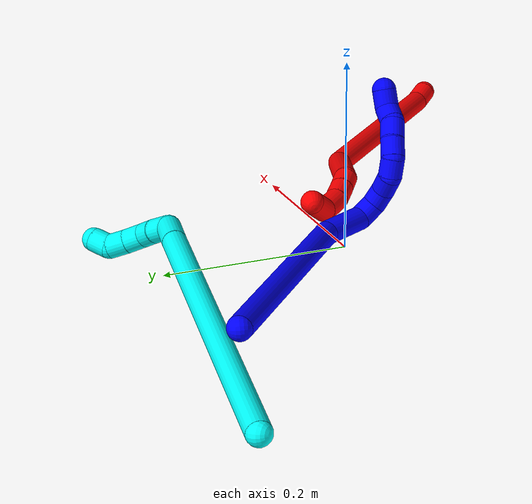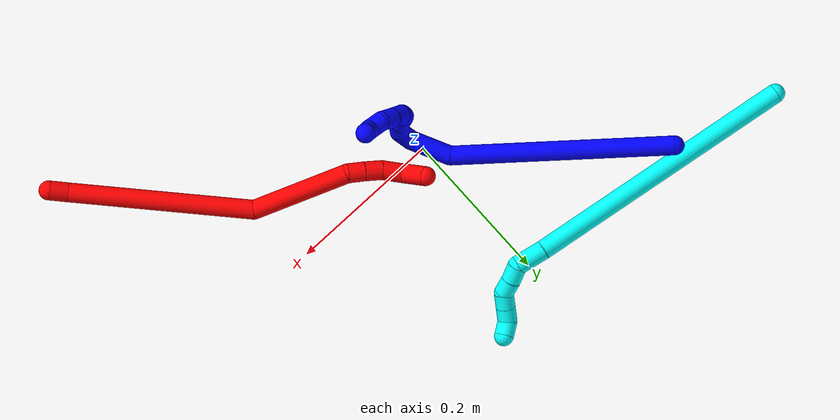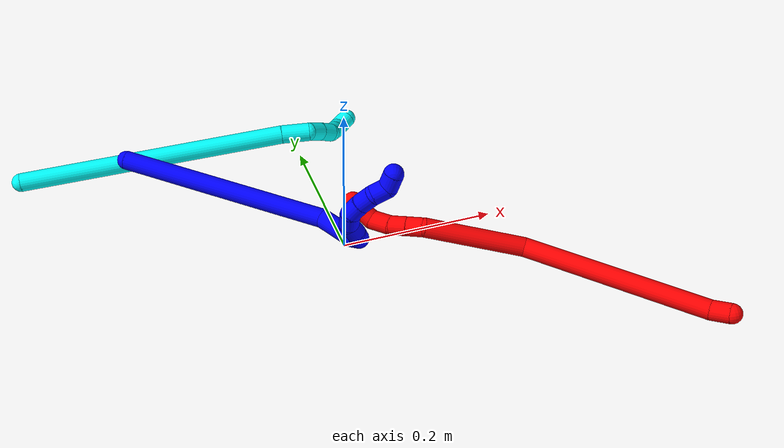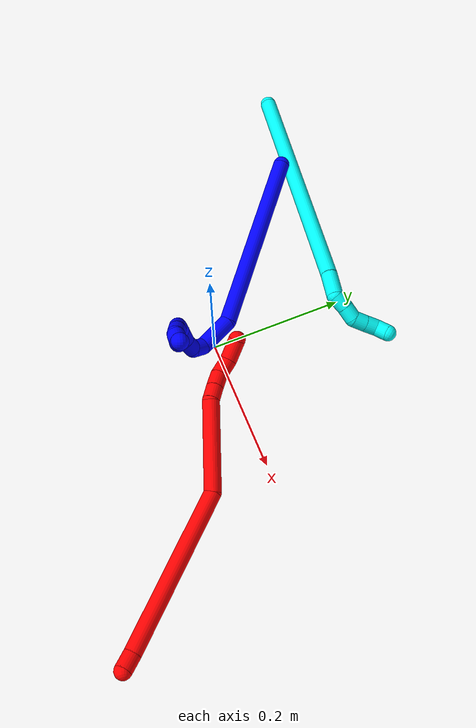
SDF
<sdf version="1.7">
 <world name="default">
  <plugin name="TubeGeneratorPlugin" filename="libtube_generator_plugin.so"/>
  <model name="photoneo_s_sensor">
   <static>1</static>
   <pose>0 0 2 1.57079 1.57079 3.14159</pose>
   <link name="link">
    <inertial><mass>0.1</mass></inertial>
    <sensor name="sensor" type="depth">
     <update_rate>30</update_rate>
     <camera>
      <horizontal_fov>1.22</horizontal_fov>
      <image><width>1920</width><height>1200</height><format>B8G8R8</format></image>
      <clip><near>0.1</near><far>4</far></clip>
      <depth_camera><output>points</output></depth_camera>
     </camera>
     <plugin name="camera_plugin" filename="libgazebo_ros_depth_camera.so">
      <baseline>0.2</baseline>
      <alwaysOn>1</alwaysOn>
      <updateRate>0.0</updateRate>
      <cameraName>camera_ir</cameraName>
      <imageTopicName>/camera/color/image_raw</imageTopicName>
      <cameraInfoTopicName>/camera/color/camera_info</cameraInfoTopicName>
      <depthImageTopicName>/camera/depth/image_raw</depthImageTopicName>
      <depthImageCameraInfoTopicName>/camera/depth/camera_info</depthImageCameraInfoTopicName>
      <pointCloudTopicName>/camera/depth/points</pointCloudTopicName>
      <frameName>fr_optical</frameName>
      <pointCloudCutoff>0.1</pointCloudCutoff>
      <pointCloudCutoffMax>2.0</pointCloudCutoffMax>
      <distortionK1>0</distortionK1>
      <distortionK2>0</distortionK2>
      <distortionK3>0</distortionK3>
      <distortionT1>0</distortionT1>
      <distortionT2>0</distortionT2>
      <CxPrime>0</CxPrime>
      <Cx>0</Cx>
      <Cy>0</Cy>
      <focalLength>0</focalLength>
      <hackBaseline>0</hackBaseline>
     </plugin>
    </sensor>
   </link>
  </model>
  <gravity>0 0 -9.8</gravity>
  <magnetic_field>6e-06 2.3e-05 -4.2e-05</magnetic_field>
  <atmosphere type="adiabatic"/>
  <physics name="default_physics" default="0" type="ode">
   <max_step_size>0.003</max_step_size>
   <real_time_factor>1</real_time_factor>
   <real_time_update_rate>1000</real_time_update_rate>
   <max_contacts>10000</max_contacts>
   <ode>
    <solver>
     <type>quick</type>
     <iters>100</iters>
     <sor>1.3</sor>
     <use_dynamic_moi_rescaling>0</use_dynamic_moi_rescaling>
    </solver>
    <constraints>
     <contact_max_correcting_vel>0</contact_max_correcting_vel>
     <contact_surface_layer>0.001</contact_surface_layer>
     <cfm>0</cfm>
     <erp>0.2</erp>
    </constraints>
   </ode>
  </physics>
  <scene><ambient>0.4 0.4 0.4 1</ambient><background>0.7 0.7 0.7 1</background><shadows>0</shadows></scene>
  <audio><device>default</device></audio>
  <spherical_coordinates>
   <surface_model>EARTH_WGS84</surface_model>
   <latitude_deg>0</latitude_deg>
   <longitude_deg>0</longitude_deg>
   <elevation>0</elevation>
   <heading_deg>0</heading_deg>
  </spherical_coordinates>
  <model name="bin">
   <static>1</static>
   <link name="bottom">
    <collision name="collision-bottom">
     <pose>0 0 -0.01 0 -0 0</pose>
     <geometry><box><size>0.8 0.6 0.02</size></box></geometry>
     <surface>
      <friction><ode><mu>100</mu><mu2>100</mu2></ode></friction>
      <contact><collide_bitmask>65535</collide_bitmask></contact>
     </surface>
    </collision>
   </link>
   <link name="west_wall">
    <collision name="collision-west_wall">
     <pose>-0.41 0 0.1 0 -0 0</pose>
     <geometry><box><size>0.02 0.6 0.2</size></box></geometry>
     <surface>
      <friction><ode><mu>100</mu><mu2>100</mu2></ode></friction>
      <contact><collide_bitmask>65535</collide_bitmask></contact>
     </surface>
    </collision>
   </link>
   <link name="east_wall">
    <collision name="collision-east_wall">
     <pose>0.41 0 0.1 0 -0 0</pose>
     <geometry><box><size>0.02 0.6 0.2</size></box></geometry>
     <surface>
      <friction><ode><mu>100</mu><mu2>100</mu2></ode></friction>
      <contact><collide_bitmask>65535</collide_bitmask></contact>
     </surface>
    </collision>
   </link>
   <link name="south_wall">
    <collision name="collision-south_wall">
     <pose>0 -0.31 0.1 0 -0 0</pose>
     <geometry><box><size>0.8 0.02 0.2</size></box></geometry>
     <surface>
      <friction><ode><mu>100</mu><mu2>100</mu2></ode></friction>
      <contact><collide_bitmask>65535</collide_bitmask></contact>
     </surface>
    </collision>
   </link>
   <link name="north_wall">
    <collision name="collision-north_wall">
     <pose>0 0.31 0.1 0 -0 0</pose>
     <geometry><box><size>0.8 0.02 0.2</size></box></geometry>
     <surface>
      <friction><ode><mu>100</mu><mu2>100</mu2></ode></friction>
      <contact><collide_bitmask>65535</collide_bitmask></contact>
     </surface>
    </collision>
   </link>
  </model>
  <model name="1">
   <static>0</static>
   <link name="1">
    <collision name="collision-cylinder-e_1_1_4">
     <pose>0.119113 -0.059212 -0.050198 2.27399 0.993222 1.72704</pose>
     <geometry><cylinder><radius>0.0125</radius><length>0.284351</length></cylinder></geometry>
     <surface>
      <friction><ode><mu>1.16</mu><mu2>1.16</mu2><slip1>0</slip1><slip2>0</slip2></ode></friction>
      <contact><ode><kp>1e+06</kp><kd>1</kd><max_vel>0</max_vel><min_depth>0.001</min_depth></ode></contact>
     </surface>
    </collision>
    <visual name="visual-cylinder-e_1_1_4">
     <pose>0.119113 -0.059212 -0.050198 2.27399 0.993222 1.72704</pose>
     <geometry><cylinder><radius>0.0125</radius><length>0.284351</length></cylinder></geometry>
     <material><ambient>0 0 1 1</ambient></material>
    </visual>
    <collision name="collision-cylinder-e_2_4_5">
     <pose>0.254793 -0.12754 -0.119324 2.69276 0.66771 1.97747</pose>
     <geometry><cylinder><radius>0.0125</radius><length>0.053509</length></cylinder></geometry>
     <surface>
      <friction><ode><mu>1.16</mu><mu2>1.16</mu2><slip1>0</slip1><slip2>0</slip2></ode></friction>
      <contact><ode><kp>1e+06</kp><kd>1</kd><max_vel>0</max_vel><min_depth>0.001</min_depth></ode></contact>
     </surface>
    </collision>
    <visual name="visual-cylinder-e_2_4_5">
     <pose>0.254793 -0.12754 -0.119324 2.69276 0.66771 1.97747</pose>
     <geometry><cylinder><radius>0.0125</radius><length>0.053509</length></cylinder></geometry>
     <material><ambient>0 0 1 1</ambient></material>
    </visual>
    <collision name="collision-cylinder-e_3_5_6">
     <pose>0.272541 -0.143501 -0.146174 2.42902 0.112435 0.300153</pose>
     <geometry><cylinder><radius>0.0125</radius><length>0.021073</length></cylinder></geometry>
     <surface>
      <friction><ode><mu>1.16</mu><mu2>1.16</mu2><slip1>0</slip1><slip2>0</slip2></ode></friction>
      <contact><ode><kp>1e+06</kp><kd>1</kd><max_vel>0</max_vel><min_depth>0.001</min_depth></ode></contact>
     </surface>
    </collision>
    <visual name="visual-cylinder-e_3_5_6">
     <pose>0.272541 -0.143501 -0.146174 2.42902 0.112435 0.300153</pose>
     <geometry><cylinder><radius>0.0125</radius><length>0.021073</length></cylinder></geometry>
     <material><ambient>0 0 1 1</ambient></material>
    </visual>
    <collision name="collision-cylinder-e_4_6_7">
     <pose>0.267513 -0.156479 -0.159263 2.27088 -0.658883 -1.26777</pose>
     <geometry><cylinder><radius>0.0125</radius><length>0.020285</length></cylinder></geometry>
     <surface>
      <friction><ode><mu>1.16</mu><mu2>1.16</mu2><slip1>0</slip1><slip2>0</slip2></ode></friction>
      <contact><ode><kp>1e+06</kp><kd>1</kd><max_vel>0</max_vel><min_depth>0.001</min_depth></ode></contact>
     </surface>
    </collision>
    <visual name="visual-cylinder-e_4_6_7">
     <pose>0.267513 -0.156479 -0.159263 2.27088 -0.658883 -1.26777</pose>
     <geometry><cylinder><radius>0.0125</radius><length>0.020285</length></cylinder></geometry>
     <material><ambient>0 0 1 1</ambient></material>
    </visual>
    <collision name="collision-cylinder-e_5_7_8">
     <pose>0.253236 -0.16778 -0.16792 2.16473 -0.912858 -1.49188</pose>
     <geometry><cylinder><radius>0.0125</radius><length>0.020393</length></cylinder></geometry>
     <surface>
      <friction><ode><mu>1.16</mu><mu2>1.16</mu2><slip1>0</slip1><slip2>0</slip2></ode></friction>
      <contact><ode><kp>1e+06</kp><kd>1</kd><max_vel>0</max_vel><min_depth>0.001</min_depth></ode></contact>
     </surface>
    </collision>
    <visual name="visual-cylinder-e_5_7_8">
     <pose>0.253236 -0.16778 -0.16792 2.16473 -0.912858 -1.49188</pose>
     <geometry><cylinder><radius>0.0125</radius><length>0.020393</length></cylinder></geometry>
     <material><ambient>0 0 1 1</ambient></material>
    </visual>
    <collision name="collision-cylinder-e_6_8_9">
     <pose>0.240752 -0.181783 -0.173483 1.80139 -0.452732 -0.565706</pose>
     <geometry><cylinder><radius>0.0125</radius><length>0.020187</length></cylinder></geometry>
     <surface>
      <friction><ode><mu>1.16</mu><mu2>1.16</mu2><slip1>0</slip1><slip2>0</slip2></ode></friction>
      <contact><ode><kp>1e+06</kp><kd>1</kd><max_vel>0</max_vel><min_depth>0.001</min_depth></ode></contact>
     </surface>
    </collision>
    <visual name="visual-cylinder-e_6_8_9">
     <pose>0.240752 -0.181783 -0.173483 1.80139 -0.452732 -0.565706</pose>
     <geometry><cylinder><radius>0.0125</radius><length>0.020187</length></cylinder></geometry>
     <material><ambient>0 0 1 1</ambient></material>
    </visual>
    <collision name="collision-cylinder-e_7_9_10">
     <pose>0.237487 -0.200551 -0.176306 1.64601 0.114936 0.123901</pose>
     <geometry><cylinder><radius>0.0125</radius><length>0.02005</length></cylinder></geometry>
     <surface>
      <friction><ode><mu>1.16</mu><mu2>1.16</mu2><slip1>0</slip1><slip2>0</slip2></ode></friction>
      <contact><ode><kp>1e+06</kp><kd>1</kd><max_vel>0</max_vel><min_depth>0.001</min_depth></ode></contact>
     </surface>
    </collision>
    <visual name="visual-cylinder-e_7_9_10">
     <pose>0.237487 -0.200551 -0.176306 1.64601 0.114936 0.123901</pose>
     <geometry><cylinder><radius>0.0125</radius><length>0.02005</length></cylinder></geometry>
     <material><ambient>0 0 1 1</ambient></material>
    </visual>
    <collision name="collision-cylinder-e_8_10_11">
     <pose>0.241023 -0.220198 -0.178213 1.68948 0.239196 0.269071</pose>
     <geometry><cylinder><radius>0.0125</radius><length>0.020146</length></cylinder></geometry>
     <surface>
      <friction><ode><mu>1.16</mu><mu2>1.16</mu2><slip1>0</slip1><slip2>0</slip2></ode></friction>
      <contact><ode><kp>1e+06</kp><kd>1</kd><max_vel>0</max_vel><min_depth>0.001</min_depth></ode></contact>
     </surface>
    </collision>
    <visual name="visual-cylinder-e_8_10_11">
     <pose>0.241023 -0.220198 -0.178213 1.68948 0.239196 0.269071</pose>
     <geometry><cylinder><radius>0.0125</radius><length>0.020146</length></cylinder></geometry>
     <material><ambient>0 0 1 1</ambient></material>
    </visual>
    <collision name="collision-cylinder-e_9_11_12">
     <pose>0.248783 -0.238198 -0.177778 1.38067 0.567253 0.472483</pose>
     <geometry><cylinder><radius>0.0125</radius><length>0.02</length></cylinder></geometry>
     <surface>
      <friction><ode><mu>1.16</mu><mu2>1.16</mu2><slip1>0</slip1><slip2>0</slip2></ode></friction>
      <contact><ode><kp>1e+06</kp><kd>1</kd><max_vel>0</max_vel><min_depth>0.001</min_depth></ode></contact>
     </surface>
    </collision>
    <visual name="visual-cylinder-e_9_11_12">
     <pose>0.248783 -0.238198 -0.177778 1.38067 0.567253 0.472483</pose>
     <geometry><cylinder><radius>0.0125</radius><length>0.02</length></cylinder></geometry>
     <material><ambient>0 0 1 1</ambient></material>
    </visual>
    <collision name="collision-cylinder-e_10_12_2">
     <pose>0.252162 -0.256254 -0.175446 1.49537 -0.200743 -0.186234</pose>
     <geometry><cylinder><radius>0.0125</radius><length>0.020006</length></cylinder></geometry>
     <surface>
      <friction><ode><mu>1.16</mu><mu2>1.16</mu2><slip1>0</slip1><slip2>0</slip2></ode></friction>
      <contact><ode><kp>1e+06</kp><kd>1</kd><max_vel>0</max_vel><min_depth>0.001</min_depth></ode></contact>
     </surface>
    </collision>
    <visual name="visual-cylinder-e_10_12_2">
     <pose>0.252162 -0.256254 -0.175446 1.49537 -0.200743 -0.186234</pose>
     <geometry><cylinder><radius>0.0125</radius><length>0.020006</length></cylinder></geometry>
     <material><ambient>0 0 1 1</ambient></material>
    </visual>
    <collision name="collision-sphere-2">
     <pose>0.250167 -0.266028 -0.174707 0 -0 0</pose>
     <geometry><sphere><radius>0.0125</radius></sphere></geometry>
     <surface>
      <friction><ode><mu>1.16</mu><mu2>1.16</mu2><slip1>0</slip1><slip2>0</slip2></ode></friction>
      <contact><ode><kp>1e+06</kp><kd>1</kd><max_vel>0</max_vel><min_depth>0.001</min_depth></ode></contact>
     </surface>
    </collision>
    <visual name="visual-sphere-2">
     <pose>0.250167 -0.266028 -0.174707 0 -0 0</pose>
     <geometry><sphere><radius>0.0125</radius></sphere></geometry>
     <material><ambient>0 0 1 1</ambient></material>
    </visual>
    <collision name="collision-sphere-12">
     <pose>0.254156 -0.246479 -0.176184 0 -0 0</pose>
     <geometry><sphere><radius>0.0125</radius></sphere></geometry>
     <surface>
      <friction><ode><mu>1.16</mu><mu2>1.16</mu2><slip1>0</slip1><slip2>0</slip2></ode></friction>
      <contact><ode><kp>1e+06</kp><kd>1</kd><max_vel>0</max_vel><min_depth>0.001</min_depth></ode></contact>
     </surface>
    </collision>
    <visual name="visual-sphere-12">
     <pose>0.254156 -0.246479 -0.176184 0 -0 0</pose>
     <geometry><sphere><radius>0.0125</radius></sphere></geometry>
     <material><ambient>0 0 1 1</ambient></material>
    </visual>
    <collision name="collision-sphere-11">
     <pose>0.24341 -0.229916 -0.179372 0 -0 0</pose>
     <geometry><sphere><radius>0.0125</radius></sphere></geometry>
     <surface>
      <friction><ode><mu>1.16</mu><mu2>1.16</mu2><slip1>0</slip1><slip2>0</slip2></ode></friction>
      <contact><ode><kp>1e+06</kp><kd>1</kd><max_vel>0</max_vel><min_depth>0.001</min_depth></ode></contact>
     </surface>
    </collision>
    <visual name="visual-sphere-11">
     <pose>0.24341 -0.229916 -0.179372 0 -0 0</pose>
     <geometry><sphere><radius>0.0125</radius></sphere></geometry>
     <material><ambient>0 0 1 1</ambient></material>
    </visual>
    <collision name="collision-sphere-10">
     <pose>0.238637 -0.210481 -0.177055 0 -0 0</pose>
     <geometry><sphere><radius>0.0125</radius></sphere></geometry>
     <surface>
      <friction><ode><mu>1.16</mu><mu2>1.16</mu2><slip1>0</slip1><slip2>0</slip2></ode></friction>
      <contact><ode><kp>1e+06</kp><kd>1</kd><max_vel>0</max_vel><min_depth>0.001</min_depth></ode></contact>
     </surface>
    </collision>
    <visual name="visual-sphere-10">
     <pose>0.238637 -0.210481 -0.177055 0 -0 0</pose>
     <geometry><sphere><radius>0.0125</radius></sphere></geometry>
     <material><ambient>0 0 1 1</ambient></material>
    </visual>
    <collision name="collision-sphere-9">
     <pose>0.236337 -0.19062 -0.175558 0 -0 0</pose>
     <geometry><sphere><radius>0.0125</radius></sphere></geometry>
     <surface>
      <friction><ode><mu>1.16</mu><mu2>1.16</mu2><slip1>0</slip1><slip2>0</slip2></ode></friction>
      <contact><ode><kp>1e+06</kp><kd>1</kd><max_vel>0</max_vel><min_depth>0.001</min_depth></ode></contact>
     </surface>
    </collision>
    <visual name="visual-sphere-9">
     <pose>0.236337 -0.19062 -0.175558 0 -0 0</pose>
     <geometry><sphere><radius>0.0125</radius></sphere></geometry>
     <material><ambient>0 0 1 1</ambient></material>
    </visual>
    <collision name="collision-sphere-4">
     <pose>0.238227 -0.118424 -0.100396 0 -0 0</pose>
     <geometry><sphere><radius>0.0125</radius></sphere></geometry>
     <surface>
      <friction><ode><mu>1.16</mu><mu2>1.16</mu2><slip1>0</slip1><slip2>0</slip2></ode></friction>
      <contact><ode><kp>1e+06</kp><kd>1</kd><max_vel>0</max_vel><min_depth>0.001</min_depth></ode></contact>
     </surface>
    </collision>
    <visual name="visual-sphere-4">
     <pose>0.238227 -0.118424 -0.100396 0 -0 0</pose>
     <geometry><sphere><radius>0.0125</radius></sphere></geometry>
     <material><ambient>0 0 1 1</ambient></material>
    </visual>
    <collision name="collision-sphere-1">
     <geometry><sphere><radius>0.0125</radius></sphere></geometry>
     <surface>
      <friction><ode><mu>1.16</mu><mu2>1.16</mu2><slip1>0</slip1><slip2>0</slip2></ode></friction>
      <contact><ode><kp>1e+06</kp><kd>1</kd><max_vel>0</max_vel><min_depth>0.001</min_depth></ode></contact>
     </surface>
    </collision>
    <visual name="visual-sphere-1">
     <geometry><sphere><radius>0.0125</radius></sphere></geometry>
     <material><ambient>0 0 1 1</ambient></material>
    </visual>
    <collision name="collision-sphere-8">
     <pose>0.245168 -0.172947 -0.171409 0 -0 0</pose>
     <geometry><sphere><radius>0.0125</radius></sphere></geometry>
     <surface>
      <friction><ode><mu>1.16</mu><mu2>1.16</mu2><slip1>0</slip1><slip2>0</slip2></ode></friction>
      <contact><ode><kp>1e+06</kp><kd>1</kd><max_vel>0</max_vel><min_depth>0.001</min_depth></ode></contact>
     </surface>
    </collision>
    <visual name="visual-sphere-8">
     <pose>0.245168 -0.172947 -0.171409 0 -0 0</pose>
     <geometry><sphere><radius>0.0125</radius></sphere></geometry>
     <material><ambient>0 0 1 1</ambient></material>
    </visual>
    <collision name="collision-sphere-5">
     <pose>0.271359 -0.136656 -0.138252 0 -0 0</pose>
     <geometry><sphere><radius>0.0125</radius></sphere></geometry>
     <surface>
      <friction><ode><mu>1.16</mu><mu2>1.16</mu2><slip1>0</slip1><slip2>0</slip2></ode></friction>
      <contact><ode><kp>1e+06</kp><kd>1</kd><max_vel>0</max_vel><min_depth>0.001</min_depth></ode></contact>
     </surface>
    </collision>
    <visual name="visual-sphere-5">
     <pose>0.271359 -0.136656 -0.138252 0 -0 0</pose>
     <geometry><sphere><radius>0.0125</radius></sphere></geometry>
     <material><ambient>0 0 1 1</ambient></material>
    </visual>
    <collision name="collision-sphere-6">
     <pose>0.273723 -0.150346 -0.154097 0 -0 0</pose>
     <geometry><sphere><radius>0.0125</radius></sphere></geometry>
     <surface>
      <friction><ode><mu>1.16</mu><mu2>1.16</mu2><slip1>0</slip1><slip2>0</slip2></ode></friction>
      <contact><ode><kp>1e+06</kp><kd>1</kd><max_vel>0</max_vel><min_depth>0.001</min_depth></ode></contact>
     </surface>
    </collision>
    <visual name="visual-sphere-6">
     <pose>0.273723 -0.150346 -0.154097 0 -0 0</pose>
     <geometry><sphere><radius>0.0125</radius></sphere></geometry>
     <material><ambient>0 0 1 1</ambient></material>
    </visual>
    <collision name="collision-sphere-7">
     <pose>0.261304 -0.162612 -0.16443 0 -0 0</pose>
     <geometry><sphere><radius>0.0125</radius></sphere></geometry>
     <surface>
      <friction><ode><mu>1.16</mu><mu2>1.16</mu2><slip1>0</slip1><slip2>0</slip2></ode></friction>
      <contact><ode><kp>1e+06</kp><kd>1</kd><max_vel>0</max_vel><min_depth>0.001</min_depth></ode></contact>
     </surface>
    </collision>
    <visual name="visual-sphere-7">
     <pose>0.261304 -0.162612 -0.16443 0 -0 0</pose>
     <geometry><sphere><radius>0.0125</radius></sphere></geometry>
     <material><ambient>0 0 1 1</ambient></material>
    </visual>
    <inertial>
     <pose>0.176671 -0.110597 -0.096174 0 -0 0</pose>
     <mass>0.5</mass>
     <inertia>
      <ixx>0.000908</ixx>
      <ixy>0</ixy>
      <ixz>0</ixz>
      <iyy>0.002448</iyy>
      <iyz>0</iyz>
      <izz>-0.000819</izz>
     </inertia>
    </inertial>
   </link>
   <pose>-0.238951 0.210027 0.042975 -1.64366 0.542476 -0.361168</pose>
  </model>
  <model name="2">
   <static>0</static>
   <link name="2">
    <collision name="collision-cylinder-e_1_1_4">
     <pose>-0.002454 0.007022 -0.010003 -2.52957 -0.198168 0.60969</pose>
     <geometry><cylinder><radius>0.0125</radius><length>0.024931</length></cylinder></geometry>
     <surface>
      <friction><ode><mu>1.16</mu><mu2>1.16</mu2><slip1>0</slip1><slip2>0</slip2></ode></friction>
      <contact><ode><kp>1e+06</kp><kd>1</kd><max_vel>0</max_vel><min_depth>0.001</min_depth></ode></contact>
     </surface>
    </collision>
    <visual name="visual-cylinder-e_1_1_4">
     <pose>-0.002454 0.007022 -0.010003 -2.52957 -0.198168 0.60969</pose>
     <geometry><cylinder><radius>0.0125</radius><length>0.024931</length></cylinder></geometry>
     <material><ambient>1 0 0 1</ambient></material>
    </visual>
    <collision name="collision-cylinder-e_2_4_5">
     <pose>-0.0518 0.06917 -0.114532 -2.61363 -0.404849 1.29887</pose>
     <geometry><cylinder><radius>0.0125</radius><length>0.238099</length></cylinder></geometry>
     <surface>
      <friction><ode><mu>1.16</mu><mu2>1.16</mu2><slip1>0</slip1><slip2>0</slip2></ode></friction>
      <contact><ode><kp>1e+06</kp><kd>1</kd><max_vel>0</max_vel><min_depth>0.001</min_depth></ode></contact>
     </surface>
    </collision>
    <visual name="visual-cylinder-e_2_4_5">
     <pose>-0.0518 0.06917 -0.114532 -2.61363 -0.404849 1.29887</pose>
     <geometry><cylinder><radius>0.0125</radius><length>0.238099</length></cylinder></geometry>
     <material><ambient>1 0 0 1</ambient></material>
    </visual>
    <collision name="collision-cylinder-e_3_5_6">
     <pose>-0.124907 0.122343 -0.268887 3.10897 -0.412783 -2.98608</pose>
     <geometry><cylinder><radius>0.0125</radius><length>0.1307</length></cylinder></geometry>
     <surface>
      <friction><ode><mu>1.16</mu><mu2>1.16</mu2><slip1>0</slip1><slip2>0</slip2></ode></friction>
      <contact><ode><kp>1e+06</kp><kd>1</kd><max_vel>0</max_vel><min_depth>0.001</min_depth></ode></contact>
     </surface>
    </collision>
    <visual name="visual-cylinder-e_3_5_6">
     <pose>-0.124907 0.122343 -0.268887 3.10897 -0.412783 -2.98608</pose>
     <geometry><cylinder><radius>0.0125</radius><length>0.1307</length></cylinder></geometry>
     <material><ambient>1 0 0 1</ambient></material>
    </visual>
    <collision name="collision-cylinder-e_4_6_7">
     <pose>-0.153108 0.124359 -0.33856 -2.75846 -0.184907 0.891884</pose>
     <geometry><cylinder><radius>0.0125</radius><length>0.021596</length></cylinder></geometry>
     <surface>
      <friction><ode><mu>1.16</mu><mu2>1.16</mu2><slip1>0</slip1><slip2>0</slip2></ode></friction>
      <contact><ode><kp>1e+06</kp><kd>1</kd><max_vel>0</max_vel><min_depth>0.001</min_depth></ode></contact>
     </surface>
    </collision>
    <visual name="visual-cylinder-e_4_6_7">
     <pose>-0.153108 0.124359 -0.33856 -2.75846 -0.184907 0.891884</pose>
     <geometry><cylinder><radius>0.0125</radius><length>0.021596</length></cylinder></geometry>
     <material><ambient>1 0 0 1</ambient></material>
    </visual>
    <collision name="collision-cylinder-e_5_7_8">
     <pose>-0.157003 0.13305 -0.35861 -2.70808 -0.168221 0.731269</pose>
     <geometry><cylinder><radius>0.0125</radius><length>0.022814</length></cylinder></geometry>
     <surface>
      <friction><ode><mu>1.16</mu><mu2>1.16</mu2><slip1>0</slip1><slip2>0</slip2></ode></friction>
      <contact><ode><kp>1e+06</kp><kd>1</kd><max_vel>0</max_vel><min_depth>0.001</min_depth></ode></contact>
     </surface>
    </collision>
    <visual name="visual-cylinder-e_5_7_8">
     <pose>-0.157003 0.13305 -0.35861 -2.70808 -0.168221 0.731269</pose>
     <geometry><cylinder><radius>0.0125</radius><length>0.022814</length></cylinder></geometry>
     <material><ambient>1 0 0 1</ambient></material>
    </visual>
    <collision name="collision-cylinder-e_6_8_9">
     <pose>-0.16342 0.145484 -0.379648 -2.52305 -0.326893 0.952952</pose>
     <geometry><cylinder><radius>0.0125</radius><length>0.028078</length></cylinder></geometry>
     <surface>
      <friction><ode><mu>1.16</mu><mu2>1.16</mu2><slip1>0</slip1><slip2>0</slip2></ode></friction>
      <contact><ode><kp>1e+06</kp><kd>1</kd><max_vel>0</max_vel><min_depth>0.001</min_depth></ode></contact>
     </surface>
    </collision>
    <visual name="visual-cylinder-e_6_8_9">
     <pose>-0.16342 0.145484 -0.379648 -2.52305 -0.326893 0.952952</pose>
     <geometry><cylinder><radius>0.0125</radius><length>0.028078</length></cylinder></geometry>
     <material><ambient>1 0 0 1</ambient></material>
    </visual>
    <collision name="collision-cylinder-e_7_9_2">
     <pose>-0.181725 0.155586 -0.399927 -2.89351 -0.955804 2.66913</pose>
     <geometry><cylinder><radius>0.0125</radius><length>0.033783</length></cylinder></geometry>
     <surface>
      <friction><ode><mu>1.16</mu><mu2>1.16</mu2><slip1>0</slip1><slip2>0</slip2></ode></friction>
      <contact><ode><kp>1e+06</kp><kd>1</kd><max_vel>0</max_vel><min_depth>0.001</min_depth></ode></contact>
     </surface>
    </collision>
    <visual name="visual-cylinder-e_7_9_2">
     <pose>-0.181725 0.155586 -0.399927 -2.89351 -0.955804 2.66913</pose>
     <geometry><cylinder><radius>0.0125</radius><length>0.033783</length></cylinder></geometry>
     <material><ambient>1 0 0 1</ambient></material>
    </visual>
    <collision name="collision-sphere-2">
     <pose>-0.195521 0.157979 -0.409375 0 -0 0</pose>
     <geometry><sphere><radius>0.0125</radius></sphere></geometry>
     <surface>
      <friction><ode><mu>1.16</mu><mu2>1.16</mu2><slip1>0</slip1><slip2>0</slip2></ode></friction>
      <contact><ode><kp>1e+06</kp><kd>1</kd><max_vel>0</max_vel><min_depth>0.001</min_depth></ode></contact>
     </surface>
    </collision>
    <visual name="visual-sphere-2">
     <pose>-0.195521 0.157979 -0.409375 0 -0 0</pose>
     <geometry><sphere><radius>0.0125</radius></sphere></geometry>
     <material><ambient>1 0 0 1</ambient></material>
    </visual>
    <collision name="collision-sphere-9">
     <pose>-0.167928 0.153193 -0.39048 0 -0 0</pose>
     <geometry><sphere><radius>0.0125</radius></sphere></geometry>
     <surface>
      <friction><ode><mu>1.16</mu><mu2>1.16</mu2><slip1>0</slip1><slip2>0</slip2></ode></friction>
      <contact><ode><kp>1e+06</kp><kd>1</kd><max_vel>0</max_vel><min_depth>0.001</min_depth></ode></contact>
     </surface>
    </collision>
    <visual name="visual-sphere-9">
     <pose>-0.167928 0.153193 -0.39048 0 -0 0</pose>
     <geometry><sphere><radius>0.0125</radius></sphere></geometry>
     <material><ambient>1 0 0 1</ambient></material>
    </visual>
    <collision name="collision-sphere-4">
     <pose>-0.004908 0.014043 -0.020007 0 -0 0</pose>
     <geometry><sphere><radius>0.0125</radius></sphere></geometry>
     <surface>
      <friction><ode><mu>1.16</mu><mu2>1.16</mu2><slip1>0</slip1><slip2>0</slip2></ode></friction>
      <contact><ode><kp>1e+06</kp><kd>1</kd><max_vel>0</max_vel><min_depth>0.001</min_depth></ode></contact>
     </surface>
    </collision>
    <visual name="visual-sphere-4">
     <pose>-0.004908 0.014043 -0.020007 0 -0 0</pose>
     <geometry><sphere><radius>0.0125</radius></sphere></geometry>
     <material><ambient>1 0 0 1</ambient></material>
    </visual>
    <collision name="collision-sphere-1">
     <geometry><sphere><radius>0.0125</radius></sphere></geometry>
     <surface>
      <friction><ode><mu>1.16</mu><mu2>1.16</mu2><slip1>0</slip1><slip2>0</slip2></ode></friction>
      <contact><ode><kp>1e+06</kp><kd>1</kd><max_vel>0</max_vel><min_depth>0.001</min_depth></ode></contact>
     </surface>
    </collision>
    <visual name="visual-sphere-1">
     <geometry><sphere><radius>0.0125</radius></sphere></geometry>
     <material><ambient>1 0 0 1</ambient></material>
    </visual>
    <collision name="collision-sphere-8">
     <pose>-0.158912 0.137774 -0.368816 0 -0 0</pose>
     <geometry><sphere><radius>0.0125</radius></sphere></geometry>
     <surface>
      <friction><ode><mu>1.16</mu><mu2>1.16</mu2><slip1>0</slip1><slip2>0</slip2></ode></friction>
      <contact><ode><kp>1e+06</kp><kd>1</kd><max_vel>0</max_vel><min_depth>0.001</min_depth></ode></contact>
     </surface>
    </collision>
    <visual name="visual-sphere-8">
     <pose>-0.158912 0.137774 -0.368816 0 -0 0</pose>
     <geometry><sphere><radius>0.0125</radius></sphere></geometry>
     <material><ambient>1 0 0 1</ambient></material>
    </visual>
    <collision name="collision-sphere-5">
     <pose>-0.098691 0.124296 -0.209058 0 -0 0</pose>
     <geometry><sphere><radius>0.0125</radius></sphere></geometry>
     <surface>
      <friction><ode><mu>1.16</mu><mu2>1.16</mu2><slip1>0</slip1><slip2>0</slip2></ode></friction>
      <contact><ode><kp>1e+06</kp><kd>1</kd><max_vel>0</max_vel><min_depth>0.001</min_depth></ode></contact>
     </surface>
    </collision>
    <visual name="visual-sphere-5">
     <pose>-0.098691 0.124296 -0.209058 0 -0 0</pose>
     <geometry><sphere><radius>0.0125</radius></sphere></geometry>
     <material><ambient>1 0 0 1</ambient></material>
    </visual>
    <collision name="collision-sphere-6">
     <pose>-0.151122 0.120391 -0.328716 0 -0 0</pose>
     <geometry><sphere><radius>0.0125</radius></sphere></geometry>
     <surface>
      <friction><ode><mu>1.16</mu><mu2>1.16</mu2><slip1>0</slip1><slip2>0</slip2></ode></friction>
      <contact><ode><kp>1e+06</kp><kd>1</kd><max_vel>0</max_vel><min_depth>0.001</min_depth></ode></contact>
     </surface>
    </collision>
    <visual name="visual-sphere-6">
     <pose>-0.151122 0.120391 -0.328716 0 -0 0</pose>
     <geometry><sphere><radius>0.0125</radius></sphere></geometry>
     <material><ambient>1 0 0 1</ambient></material>
    </visual>
    <collision name="collision-sphere-7">
     <pose>-0.155093 0.128326 -0.348405 0 -0 0</pose>
     <geometry><sphere><radius>0.0125</radius></sphere></geometry>
     <surface>
      <friction><ode><mu>1.16</mu><mu2>1.16</mu2><slip1>0</slip1><slip2>0</slip2></ode></friction>
      <contact><ode><kp>1e+06</kp><kd>1</kd><max_vel>0</max_vel><min_depth>0.001</min_depth></ode></contact>
     </surface>
    </collision>
    <visual name="visual-sphere-7">
     <pose>-0.155093 0.128326 -0.348405 0 -0 0</pose>
     <geometry><sphere><radius>0.0125</radius></sphere></geometry>
     <material><ambient>1 0 0 1</ambient></material>
    </visual>
    <inertial>
     <pose>-0.092672 0.095393 -0.204652 0 -0 0</pose>
     <mass>0.5</mass>
     <inertia>
      <ixx>0.00108</ixx>
      <ixy>0</ixy>
      <ixz>0</ixz>
      <iyy>0.001139</iyy>
      <iyz>0</iyz>
      <izz>-2.7e-05</izz>
     </inertia>
    </inertial>
   </link>
   <pose>0.388498 -0.279882 0.020295 -1.25297 1.03491 -1.48352</pose>
  </model>
  <model name="3">
   <static>0</static>
   <link name="3">
    <collision name="collision-cylinder-e_1_1_4">
     <pose>0.130167 -0.005938 -0.122972 3.09334 0.813232 3.02963</pose>
     <geometry><cylinder><radius>0.0125</radius><length>0.358335</length></cylinder></geometry>
     <surface>
      <friction><ode><mu>1.16</mu><mu2>1.16</mu2><slip1>0</slip1><slip2>0</slip2></ode></friction>
      <contact><ode><kp>1e+06</kp><kd>1</kd><max_vel>0</max_vel><min_depth>0.001</min_depth></ode></contact>
     </surface>
    </collision>
    <visual name="visual-cylinder-e_1_1_4">
     <pose>0.130167 -0.005938 -0.122972 3.09334 0.813232 3.02963</pose>
     <geometry><cylinder><radius>0.0125</radius><length>0.358335</length></cylinder></geometry>
     <material><ambient>0.003922 1 0.996078 1</ambient></material>
    </visual>
    <collision name="collision-cylinder-e_2_4_5">
     <pose>0.27436 -0.013999 -0.258585 2.97519 0.830405 2.76767</pose>
     <geometry><cylinder><radius>0.0125</radius><length>0.038</length></cylinder></geometry>
     <surface>
      <friction><ode><mu>1.16</mu><mu2>1.16</mu2><slip1>0</slip1><slip2>0</slip2></ode></friction>
      <contact><ode><kp>1e+06</kp><kd>1</kd><max_vel>0</max_vel><min_depth>0.001</min_depth></ode></contact>
     </surface>
    </collision>
    <visual name="visual-cylinder-e_2_4_5">
     <pose>0.27436 -0.013999 -0.258585 2.97519 0.830405 2.76767</pose>
     <geometry><cylinder><radius>0.0125</radius><length>0.038</length></cylinder></geometry>
     <material><ambient>0.003922 1 0.996078 1</ambient></material>
    </visual>
    <collision name="collision-cylinder-e_3_5_6">
     <pose>0.289329 -0.020127 -0.28165 2.77484 0.084206 0.446728</pose>
     <geometry><cylinder><radius>0.0125</radius><length>0.022416</length></cylinder></geometry>
     <surface>
      <friction><ode><mu>1.16</mu><mu2>1.16</mu2><slip1>0</slip1><slip2>0</slip2></ode></friction>
      <contact><ode><kp>1e+06</kp><kd>1</kd><max_vel>0</max_vel><min_depth>0.001</min_depth></ode></contact>
     </surface>
    </collision>
    <visual name="visual-cylinder-e_3_5_6">
     <pose>0.289329 -0.020127 -0.28165 2.77484 0.084206 0.446728</pose>
     <geometry><cylinder><radius>0.0125</radius><length>0.022416</length></cylinder></geometry>
     <material><ambient>0.003922 1 0.996078 1</ambient></material>
    </visual>
    <collision name="collision-cylinder-e_4_6_7">
     <pose>0.291908 -0.028777 -0.301463 2.68214 0.155031 0.641338</pose>
     <geometry><cylinder><radius>0.0125</radius><length>0.021202</length></cylinder></geometry>
     <surface>
      <friction><ode><mu>1.16</mu><mu2>1.16</mu2><slip1>0</slip1><slip2>0</slip2></ode></friction>
      <contact><ode><kp>1e+06</kp><kd>1</kd><max_vel>0</max_vel><min_depth>0.001</min_depth></ode></contact>
     </surface>
    </collision>
    <visual name="visual-cylinder-e_4_6_7">
     <pose>0.291908 -0.028777 -0.301463 2.68214 0.155031 0.641338</pose>
     <geometry><cylinder><radius>0.0125</radius><length>0.021202</length></cylinder></geometry>
     <material><ambient>0.003922 1 0.996078 1</ambient></material>
    </visual>
    <collision name="collision-cylinder-e_5_7_8">
     <pose>0.289794 -0.035526 -0.319888 2.91275 -0.384195 -2.07421</pose>
     <geometry><cylinder><radius>0.0125</radius><length>0.020018</length></cylinder></geometry>
     <surface>
      <friction><ode><mu>1.16</mu><mu2>1.16</mu2><slip1>0</slip1><slip2>0</slip2></ode></friction>
      <contact><ode><kp>1e+06</kp><kd>1</kd><max_vel>0</max_vel><min_depth>0.001</min_depth></ode></contact>
     </surface>
    </collision>
    <visual name="visual-cylinder-e_5_7_8">
     <pose>0.289794 -0.035526 -0.319888 2.91275 -0.384195 -2.07421</pose>
     <geometry><cylinder><radius>0.0125</radius><length>0.020018</length></cylinder></geometry>
     <material><ambient>0.003922 1 0.996078 1</ambient></material>
    </visual>
    <collision name="collision-cylinder-e_6_8_9">
     <pose>0.282358 -0.039235 -0.338093 2.9684 -0.37697 -2.2874</pose>
     <geometry><cylinder><radius>0.0125</radius><length>0.020018</length></cylinder></geometry>
     <surface>
      <friction><ode><mu>1.16</mu><mu2>1.16</mu2><slip1>0</slip1><slip2>0</slip2></ode></friction>
      <contact><ode><kp>1e+06</kp><kd>1</kd><max_vel>0</max_vel><min_depth>0.001</min_depth></ode></contact>
     </surface>
    </collision>
    <visual name="visual-cylinder-e_6_8_9">
     <pose>0.282358 -0.039235 -0.338093 2.9684 -0.37697 -2.2874</pose>
     <geometry><cylinder><radius>0.0125</radius><length>0.020018</length></cylinder></geometry>
     <material><ambient>0.003922 1 0.996078 1</ambient></material>
    </visual>
    <collision name="collision-cylinder-e_7_9_2">
     <pose>0.279962 -0.038136 -0.356807 -2.86569 0.129167 -0.8719</pose>
     <geometry><cylinder><radius>0.0125</radius><length>0.020011</length></cylinder></geometry>
     <surface>
      <friction><ode><mu>1.16</mu><mu2>1.16</mu2><slip1>0</slip1><slip2>0</slip2></ode></friction>
      <contact><ode><kp>1e+06</kp><kd>1</kd><max_vel>0</max_vel><min_depth>0.001</min_depth></ode></contact>
     </surface>
    </collision>
    <visual name="visual-cylinder-e_7_9_2">
     <pose>0.279962 -0.038136 -0.356807 -2.86569 0.129167 -0.8719</pose>
     <geometry><cylinder><radius>0.0125</radius><length>0.020011</length></cylinder></geometry>
     <material><ambient>0.003922 1 0.996078 1</ambient></material>
    </visual>
    <collision name="collision-sphere-2">
     <pose>0.281251 -0.035433 -0.366354 0 -0 0</pose>
     <geometry><sphere><radius>0.0125</radius></sphere></geometry>
     <surface>
      <friction><ode><mu>1.16</mu><mu2>1.16</mu2><slip1>0</slip1><slip2>0</slip2></ode></friction>
      <contact><ode><kp>1e+06</kp><kd>1</kd><max_vel>0</max_vel><min_depth>0.001</min_depth></ode></contact>
     </surface>
    </collision>
    <visual name="visual-sphere-2">
     <pose>0.281251 -0.035433 -0.366354 0 -0 0</pose>
     <geometry><sphere><radius>0.0125</radius></sphere></geometry>
     <material><ambient>0.003922 1 0.996078 1</ambient></material>
    </visual>
    <collision name="collision-sphere-9">
     <pose>0.278674 -0.040839 -0.34726 0 -0 0</pose>
     <geometry><sphere><radius>0.0125</radius></sphere></geometry>
     <surface>
      <friction><ode><mu>1.16</mu><mu2>1.16</mu2><slip1>0</slip1><slip2>0</slip2></ode></friction>
      <contact><ode><kp>1e+06</kp><kd>1</kd><max_vel>0</max_vel><min_depth>0.001</min_depth></ode></contact>
     </surface>
    </collision>
    <visual name="visual-sphere-9">
     <pose>0.278674 -0.040839 -0.34726 0 -0 0</pose>
     <geometry><sphere><radius>0.0125</radius></sphere></geometry>
     <material><ambient>0.003922 1 0.996078 1</ambient></material>
    </visual>
    <collision name="collision-sphere-4">
     <pose>0.260335 -0.011876 -0.245945 0 -0 0</pose>
     <geometry><sphere><radius>0.0125</radius></sphere></geometry>
     <surface>
      <friction><ode><mu>1.16</mu><mu2>1.16</mu2><slip1>0</slip1><slip2>0</slip2></ode></friction>
      <contact><ode><kp>1e+06</kp><kd>1</kd><max_vel>0</max_vel><min_depth>0.001</min_depth></ode></contact>
     </surface>
    </collision>
    <visual name="visual-sphere-4">
     <pose>0.260335 -0.011876 -0.245945 0 -0 0</pose>
     <geometry><sphere><radius>0.0125</radius></sphere></geometry>
     <material><ambient>0.003922 1 0.996078 1</ambient></material>
    </visual>
    <collision name="collision-sphere-1">
     <geometry><sphere><radius>0.0125</radius></sphere></geometry>
     <surface>
      <friction><ode><mu>1.16</mu><mu2>1.16</mu2><slip1>0</slip1><slip2>0</slip2></ode></friction>
      <contact><ode><kp>1e+06</kp><kd>1</kd><max_vel>0</max_vel><min_depth>0.001</min_depth></ode></contact>
     </surface>
    </collision>
    <visual name="visual-sphere-1">
     <geometry><sphere><radius>0.0125</radius></sphere></geometry>
     <material><ambient>0.003922 1 0.996078 1</ambient></material>
    </visual>
    <collision name="collision-sphere-8">
     <pose>0.286042 -0.037631 -0.328925 0 -0 0</pose>
     <geometry><sphere><radius>0.0125</radius></sphere></geometry>
     <surface>
      <friction><ode><mu>1.16</mu><mu2>1.16</mu2><slip1>0</slip1><slip2>0</slip2></ode></friction>
      <contact><ode><kp>1e+06</kp><kd>1</kd><max_vel>0</max_vel><min_depth>0.001</min_depth></ode></contact>
     </surface>
    </collision>
    <visual name="visual-sphere-8">
     <pose>0.286042 -0.037631 -0.328925 0 -0 0</pose>
     <geometry><sphere><radius>0.0125</radius></sphere></geometry>
     <material><ambient>0.003922 1 0.996078 1</ambient></material>
    </visual>
    <collision name="collision-sphere-5">
     <pose>0.288386 -0.016122 -0.271224 0 -0 0</pose>
     <geometry><sphere><radius>0.0125</radius></sphere></geometry>
     <surface>
      <friction><ode><mu>1.16</mu><mu2>1.16</mu2><slip1>0</slip1><slip2>0</slip2></ode></friction>
      <contact><ode><kp>1e+06</kp><kd>1</kd><max_vel>0</max_vel><min_depth>0.001</min_depth></ode></contact>
     </surface>
    </collision>
    <visual name="visual-sphere-5">
     <pose>0.288386 -0.016122 -0.271224 0 -0 0</pose>
     <geometry><sphere><radius>0.0125</radius></sphere></geometry>
     <material><ambient>0.003922 1 0.996078 1</ambient></material>
    </visual>
    <collision name="collision-sphere-6">
     <pose>0.290272 -0.024132 -0.292076 0 -0 0</pose>
     <geometry><sphere><radius>0.0125</radius></sphere></geometry>
     <surface>
      <friction><ode><mu>1.16</mu><mu2>1.16</mu2><slip1>0</slip1><slip2>0</slip2></ode></friction>
      <contact><ode><kp>1e+06</kp><kd>1</kd><max_vel>0</max_vel><min_depth>0.001</min_depth></ode></contact>
     </surface>
    </collision>
    <visual name="visual-sphere-6">
     <pose>0.290272 -0.024132 -0.292076 0 -0 0</pose>
     <geometry><sphere><radius>0.0125</radius></sphere></geometry>
     <material><ambient>0.003922 1 0.996078 1</ambient></material>
    </visual>
    <collision name="collision-sphere-7">
     <pose>0.293545 -0.033421 -0.310851 0 -0 0</pose>
     <geometry><sphere><radius>0.0125</radius></sphere></geometry>
     <surface>
      <friction><ode><mu>1.16</mu><mu2>1.16</mu2><slip1>0</slip1><slip2>0</slip2></ode></friction>
      <contact><ode><kp>1e+06</kp><kd>1</kd><max_vel>0</max_vel><min_depth>0.001</min_depth></ode></contact>
     </surface>
    </collision>
    <visual name="visual-sphere-7">
     <pose>0.293545 -0.033421 -0.310851 0 -0 0</pose>
     <geometry><sphere><radius>0.0125</radius></sphere></geometry>
     <material><ambient>0.003922 1 0.996078 1</ambient></material>
    </visual>
    <inertial>
     <pose>0.173599 -0.011962 -0.173816 0 -0 0</pose>
     <mass>0.5</mass>
     <inertia>
      <ixx>-0.002312</ixx>
      <ixy>0</ixy>
      <ixz>0</ixz>
      <iyy>0.004132</iyy>
      <iyz>0</iyz>
      <izz>-0.002699</izz>
     </inertia>
    </inertial>
   </link>
   <pose>-0.379836 0.247792 0.011494 1.44824 -0.290786 -0.892293</pose>
  </model>
 </world>
</sdf>
